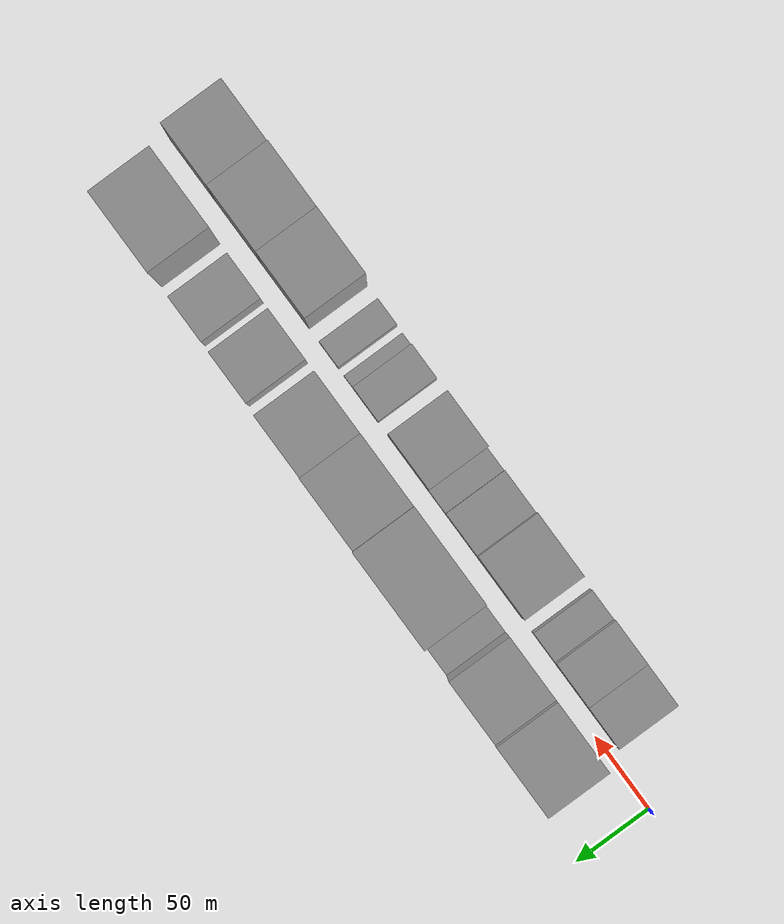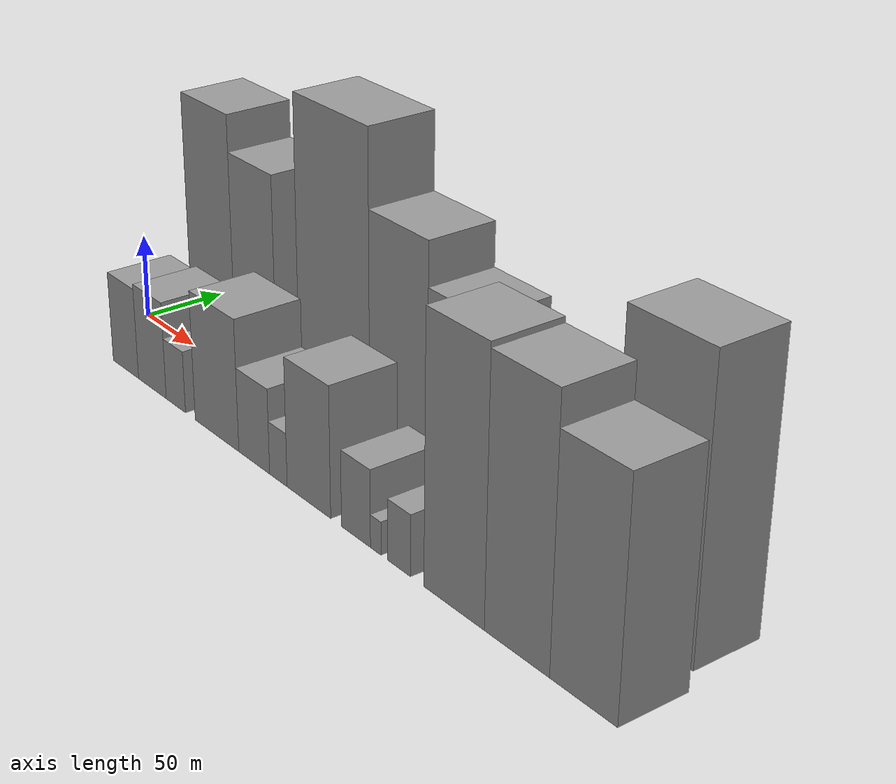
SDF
<sdf version="1.6">
 <world name="default">
  <scene>
   <sky><clouds><speed>12</speed></clouds></sky>
   <ambient>0.4 0.4 0.4 1</ambient>
   <background>0.7 0.7 0.7 1</background>
   <shadows>1</shadows>
  </scene>
  <gravity>0 0 -9.8066</gravity>
  <magnetic_field>6e-06 2.3e-05 -4.2e-05</magnetic_field>
  <physics default="0" name="default_physics" type="ode">
   <ode>
    <solver>
     <type>quick</type>
     <iters>10</iters>
     <sor>1.0</sor>
     <use_dynamic_moi_rescaling>0</use_dynamic_moi_rescaling>
    </solver>
    <constraints>
     <cfm>0</cfm>
     <erp>0.2</erp>
     <contact_max_correcting_vel>100</contact_max_correcting_vel>
     <contact_surface_layer>0.001</contact_surface_layer>
    </constraints>
   </ode>
   <max_step_size>0.004</max_step_size>
   <real_time_factor>1</real_time_factor>
   <real_time_update_rate>250</real_time_update_rate>
  </physics>
  <light name="sun" type="directional">
   <pose>0 0 10 0 0 0</pose>
   <diffuse>0.8 0.8 0.8 1</diffuse>
   <specular>0.2 0.2 0.2 1</specular>
   <attenuation>
    <range>1000</range>
    <constant>0.9</constant>
    <linear>0.01</linear>
    <quadratic>0.001</quadratic>
   </attenuation>
   <direction>-0.5 0.1 -0.9</direction>
  </light>
  <model name="building_1">
   <static>1</static>
   <pose>63.0577 26.0000 0 0.000000 0.000000 1.570796</pose>
   <link name="link">
    <pose>0 0 73.50 0 0 0</pose>
    <collision name="collision"><geometry><box><size>40.0000 46.1155 147.0000</size></box></geometry></collision>
    <visual name="visual">
     <cast_shadows>0</cast_shadows>
     <geometry><box><size>40.0000 46.1155 147.0000</size></box></geometry>
     <material>
      <script>
       <uri>model://grey_wall/materials/scripts</uri>
       <uri>model://grey_wall/materials/textures</uri>
       <name>vrc/grey_wall</name>
      </script>
     </material>
    </visual>
   </link>
  </model>
  <model name="building_2">
   <static>1</static>
   <pose>106.8716 26.0000 0 0.000000 0.000000 1.570796</pose>
   <link name="link">
    <pose>0 0 63.00 0 0 0</pose>
    <collision name="collision"><geometry><box><size>40.0000 41.5122 126.0000</size></box></geometry></collision>
    <visual name="visual">
     <cast_shadows>0</cast_shadows>
     <geometry><box><size>40.0000 41.5122 126.0000</size></box></geometry>
     <material>
      <script>
       <uri>model://grey_wall/materials/scripts</uri>
       <uri>model://grey_wall/materials/textures</uri>
       <name>vrc/grey_wall</name>
      </script>
     </material>
    </visual>
   </link>
  </model>
  <model name="building_3">
   <static>1</static>
   <pose>138.6903 26.0000 0 0.000000 0.000000 1.570796</pose>
   <link name="link">
    <pose>0 0 19.50 0 0 0</pose>
    <collision name="collision"><geometry><box><size>40.0000 22.1253 39.0000</size></box></geometry></collision>
    <visual name="visual">
     <cast_shadows>0</cast_shadows>
     <geometry><box><size>40.0000 22.1253 39.0000</size></box></geometry>
     <material>
      <script>
       <uri>model://grey_wall/materials/scripts</uri>
       <uri>model://grey_wall/materials/textures</uri>
       <name>vrc/grey_wall</name>
      </script>
     </material>
    </visual>
   </link>
  </model>
  <model name="building_4">
   <static>1</static>
   <pose>181.4317 26.0000 0 0.000000 0.000000 1.570796</pose>
   <link name="link">
    <pose>0 0 88.50 0 0 0</pose>
    <collision name="collision"><geometry><box><size>40.0000 63.3573 177.0000</size></box></geometry></collision>
    <visual name="visual">
     <cast_shadows>0</cast_shadows>
     <geometry><box><size>40.0000 63.3573 177.0000</size></box></geometry>
     <material>
      <script>
       <uri>model://grey_wall/materials/scripts</uri>
       <uri>model://grey_wall/materials/textures</uri>
       <name>vrc/grey_wall</name>
      </script>
     </material>
    </visual>
   </link>
  </model>
  <model name="building_5">
   <static>1</static>
   <pose>236.9124 26.0000 0 0.000000 0.000000 1.570796</pose>
   <link name="link">
    <pose>0 0 67.50 0 0 0</pose>
    <collision name="collision"><geometry><box><size>40.0000 47.6041 135.0000</size></box></geometry></collision>
    <visual name="visual">
     <cast_shadows>0</cast_shadows>
     <geometry><box><size>40.0000 47.6041 135.0000</size></box></geometry>
     <material>
      <script>
       <uri>model://grey_wall/materials/scripts</uri>
       <uri>model://grey_wall/materials/textures</uri>
       <name>vrc/grey_wall</name>
      </script>
     </material>
    </visual>
   </link>
  </model>
  <model name="building_6">
   <static>1</static>
   <pose>281.5483 26.0000 0 0.000000 0.000000 1.570796</pose>
   <link name="link">
    <pose>0 0 55.50 0 0 0</pose>
    <collision name="collision"><geometry><box><size>40.0000 41.6678 111.0000</size></box></geometry></collision>
    <visual name="visual">
     <cast_shadows>0</cast_shadows>
     <geometry><box><size>40.0000 41.6678 111.0000</size></box></geometry>
     <material>
      <script>
       <uri>model://grey_wall/materials/scripts</uri>
       <uri>model://grey_wall/materials/textures</uri>
       <name>vrc/grey_wall</name>
      </script>
     </material>
    </visual>
   </link>
  </model>
  <model name="building_7">
   <static>1</static>
   <pose>328.6439 26.0000 0 0.000000 0.000000 1.570796</pose>
   <link name="link">
    <pose>0 0 34.50 0 0 0</pose>
    <collision name="collision"><geometry><box><size>40.0000 34.5233 69.0000</size></box></geometry></collision>
    <visual name="visual">
     <cast_shadows>0</cast_shadows>
     <geometry><box><size>40.0000 34.5233 69.0000</size></box></geometry>
     <material>
      <script>
       <uri>model://grey_wall/materials/scripts</uri>
       <uri>model://grey_wall/materials/textures</uri>
       <name>vrc/grey_wall</name>
      </script>
     </material>
    </visual>
   </link>
  </model>
  <model name="building_8">
   <static>1</static>
   <pose>368.2719 26.0000 0 0.000000 0.000000 1.570796</pose>
   <link name="link">
    <pose>0 0 30.00 0 0 0</pose>
    <collision name="collision"><geometry><box><size>40.0000 30.7327 60.0000</size></box></geometry></collision>
    <visual name="visual">
     <cast_shadows>0</cast_shadows>
     <geometry><box><size>40.0000 30.7327 60.0000</size></box></geometry>
     <material>
      <script>
       <uri>model://grey_wall/materials/scripts</uri>
       <uri>model://grey_wall/materials/textures</uri>
       <name>vrc/grey_wall</name>
      </script>
     </material>
    </visual>
   </link>
  </model>
  <model name="building_9">
   <static>1</static>
   <pose>420.0152 26.0000 0 0.000000 0.000000 1.570796</pose>
   <link name="link">
    <pose>0 0 76.50 0 0 0</pose>
    <collision name="collision"><geometry><box><size>40.0000 52.7540 153.0000</size></box></geometry></collision>
    <visual name="visual">
     <cast_shadows>0</cast_shadows>
     <geometry><box><size>40.0000 52.7540 153.0000</size></box></geometry>
     <material>
      <script>
       <uri>model://grey_wall/materials/scripts</uri>
       <uri>model://grey_wall/materials/textures</uri>
       <name>vrc/grey_wall</name>
      </script>
     </material>
    </visual>
   </link>
  </model>
  <model name="building_10">
   <static>1</static>
   <pose>54.0624 -26.0000 0 0.000000 0.000000 1.570796</pose>
   <link name="link">
    <pose>0 0 27.00 0 0 0</pose>
    <collision name="collision"><geometry><box><size>40.0000 28.1248 54.0000</size></box></geometry></collision>
    <visual name="visual">
     <cast_shadows>0</cast_shadows>
     <geometry><box><size>40.0000 28.1248 54.0000</size></box></geometry>
     <material>
      <script>
       <uri>model://grey_wall/materials/scripts</uri>
       <uri>model://grey_wall/materials/textures</uri>
       <name>vrc/grey_wall</name>
      </script>
     </material>
    </visual>
   </link>
  </model>
  <model name="building_11">
   <static>1</static>
   <pose>82.9987 -26.0000 0 0.000000 0.000000 1.570796</pose>
   <link name="link">
    <pose>0 0 28.50 0 0 0</pose>
    <collision name="collision"><geometry><box><size>40.0000 29.7478 57.0000</size></box></geometry></collision>
    <visual name="visual">
     <cast_shadows>0</cast_shadows>
     <geometry><box><size>40.0000 29.7478 57.0000</size></box></geometry>
     <material>
      <script>
       <uri>model://grey_wall/materials/scripts</uri>
       <uri>model://grey_wall/materials/textures</uri>
       <name>vrc/grey_wall</name>
      </script>
     </material>
    </visual>
   </link>
  </model>
  <model name="building_12">
   <static>1</static>
   <pose>107.8388 -26.0000 0 0.000000 0.000000 1.570796</pose>
   <link name="link">
    <pose>0 0 18.00 0 0 0</pose>
    <collision name="collision"><geometry><box><size>40.0000 19.9323 36.0000</size></box></geometry></collision>
    <visual name="visual">
     <cast_shadows>0</cast_shadows>
     <geometry><box><size>40.0000 19.9323 36.0000</size></box></geometry>
     <material>
      <script>
       <uri>model://grey_wall/materials/scripts</uri>
       <uri>model://grey_wall/materials/textures</uri>
       <name>vrc/grey_wall</name>
      </script>
     </material>
    </visual>
   </link>
  </model>
  <model name="building_13">
   <static>1</static>
   <pose>149.1406 -26.0000 0 0.000000 0.000000 1.570796</pose>
   <link name="link">
    <pose>0 0 37.50 0 0 0</pose>
    <collision name="collision"><geometry><box><size>40.0000 42.6714 75.0000</size></box></geometry></collision>
    <visual name="visual">
     <cast_shadows>0</cast_shadows>
     <geometry><box><size>40.0000 42.6714 75.0000</size></box></geometry>
     <material>
      <script>
       <uri>model://grey_wall/materials/scripts</uri>
       <uri>model://grey_wall/materials/textures</uri>
       <name>vrc/grey_wall</name>
      </script>
     </material>
    </visual>
   </link>
  </model>
  <model name="building_14">
   <static>1</static>
   <pose>184.8186 -26.0000 0 0.000000 0.000000 1.570796</pose>
   <link name="link">
    <pose>0 0 24.00 0 0 0</pose>
    <collision name="collision"><geometry><box><size>40.0000 28.6846 48.0000</size></box></geometry></collision>
    <visual name="visual">
     <cast_shadows>0</cast_shadows>
     <geometry><box><size>40.0000 28.6846 48.0000</size></box></geometry>
     <material>
      <script>
       <uri>model://grey_wall/materials/scripts</uri>
       <uri>model://grey_wall/materials/textures</uri>
       <name>vrc/grey_wall</name>
      </script>
     </material>
    </visual>
   </link>
  </model>
  <model name="building_15">
   <static>1</static>
   <pose>207.0385 -26.0000 0 0.000000 0.000000 1.570796</pose>
   <link name="link">
    <pose>0 0 15.00 0 0 0</pose>
    <collision name="collision"><geometry><box><size>40.0000 15.7552 30.0000</size></box></geometry></collision>
    <visual name="visual">
     <cast_shadows>0</cast_shadows>
     <geometry><box><size>40.0000 15.7552 30.0000</size></box></geometry>
     <material>
      <script>
       <uri>model://grey_wall/materials/scripts</uri>
       <uri>model://grey_wall/materials/textures</uri>
       <name>vrc/grey_wall</name>
      </script>
     </material>
    </visual>
   </link>
  </model>
  <model name="building_16">
   <static>1</static>
   <pose>233.7462 -26.0000 0 0.000000 0.000000 1.570796</pose>
   <link name="link">
    <pose>0 0 36.00 0 0 0</pose>
    <collision name="collision"><geometry><box><size>40.0000 37.6602 72.0000</size></box></geometry></collision>
    <visual name="visual">
     <cast_shadows>0</cast_shadows>
     <geometry><box><size>40.0000 37.6602 72.0000</size></box></geometry>
     <material>
      <script>
       <uri>model://grey_wall/materials/scripts</uri>
       <uri>model://grey_wall/materials/textures</uri>
       <name>vrc/grey_wall</name>
      </script>
     </material>
    </visual>
   </link>
  </model>
  <model name="building_17">
   <static>1</static>
   <pose>273.3474 -26.0000 0 0.000000 0.000000 1.570796</pose>
   <link name="link">
    <pose>0 0 21.00 0 0 0</pose>
    <collision name="collision"><geometry><box><size>40.0000 23.5421 42.0000</size></box></geometry></collision>
    <visual name="visual">
     <cast_shadows>0</cast_shadows>
     <geometry><box><size>40.0000 23.5421 42.0000</size></box></geometry>
     <material>
      <script>
       <uri>model://grey_wall/materials/scripts</uri>
       <uri>model://grey_wall/materials/textures</uri>
       <name>vrc/grey_wall</name>
      </script>
     </material>
    </visual>
   </link>
  </model>
  <model name="building_18">
   <static>1</static>
   <pose>289.3252 -26.0000 0 0.000000 0.000000 1.570796</pose>
   <link name="link">
    <pose>0 0 9.00 0 0 0</pose>
    <collision name="collision"><geometry><box><size>40.0000 8.4134 18.0000</size></box></geometry></collision>
    <visual name="visual">
     <cast_shadows>0</cast_shadows>
     <geometry><box><size>40.0000 8.4134 18.0000</size></box></geometry>
     <material>
      <script>
       <uri>model://grey_wall/materials/scripts</uri>
       <uri>model://grey_wall/materials/textures</uri>
       <name>vrc/grey_wall</name>
      </script>
     </material>
    </visual>
   </link>
  </model>
  <model name="building_19">
   <static>1</static>
   <pose>307.4489 -26.0000 0 0.000000 0.000000 1.570796</pose>
   <link name="link">
    <pose>0 0 16.50 0 0 0</pose>
    <collision name="collision"><geometry><box><size>40.0000 17.8341 33.0000</size></box></geometry></collision>
    <visual name="visual">
     <cast_shadows>0</cast_shadows>
     <geometry><box><size>40.0000 17.8341 33.0000</size></box></geometry>
     <material>
      <script>
       <uri>model://grey_wall/materials/scripts</uri>
       <uri>model://grey_wall/materials/textures</uri>
       <name>vrc/grey_wall</name>
      </script>
     </material>
    </visual>
   </link>
  </model>
  <model name="building_20">
   <static>1</static>
   <pose>348.1505 -26.0000 0 0.000000 0.000000 1.570796</pose>
   <link name="link">
    <pose>0 0 70.50 0 0 0</pose>
    <collision name="collision"><geometry><box><size>40.0000 43.5691 141.0000</size></box></geometry></collision>
    <visual name="visual">
     <cast_shadows>0</cast_shadows>
     <geometry><box><size>40.0000 43.5691 141.0000</size></box></geometry>
     <material>
      <script>
       <uri>model://grey_wall/materials/scripts</uri>
       <uri>model://grey_wall/materials/textures</uri>
       <name>vrc/grey_wall</name>
      </script>
     </material>
    </visual>
   </link>
  </model>
  <model name="building_21">
   <static>1</static>
   <pose>391.7637 -26.0000 0 0.000000 0.000000 1.570796</pose>
   <link name="link">
    <pose>0 0 69.00 0 0 0</pose>
    <collision name="collision"><geometry><box><size>40.0000 43.6572 138.0000</size></box></geometry></collision>
    <visual name="visual">
     <cast_shadows>0</cast_shadows>
     <geometry><box><size>40.0000 43.6572 138.0000</size></box></geometry>
     <material>
      <script>
       <uri>model://grey_wall/materials/scripts</uri>
       <uri>model://grey_wall/materials/textures</uri>
       <name>vrc/grey_wall</name>
      </script>
     </material>
    </visual>
   </link>
  </model>
  <model name="building_22">
   <static>1</static>
   <pose>434.7698 -26.0000 0 0.000000 0.000000 1.570796</pose>
   <link name="link">
    <pose>0 0 60.00 0 0 0</pose>
    <collision name="collision"><geometry><box><size>40.0000 42.3551 120.0000</size></box></geometry></collision>
    <visual name="visual">
     <cast_shadows>0</cast_shadows>
     <geometry><box><size>40.0000 42.3551 120.0000</size></box></geometry>
     <material>
      <script>
       <uri>model://grey_wall/materials/scripts</uri>
       <uri>model://grey_wall/materials/textures</uri>
       <name>vrc/grey_wall</name>
      </script>
     </material>
    </visual>
   </link>
  </model>
 </world>
</sdf>
